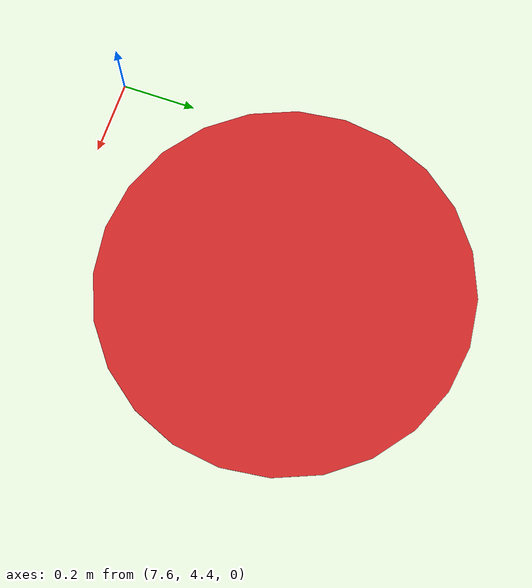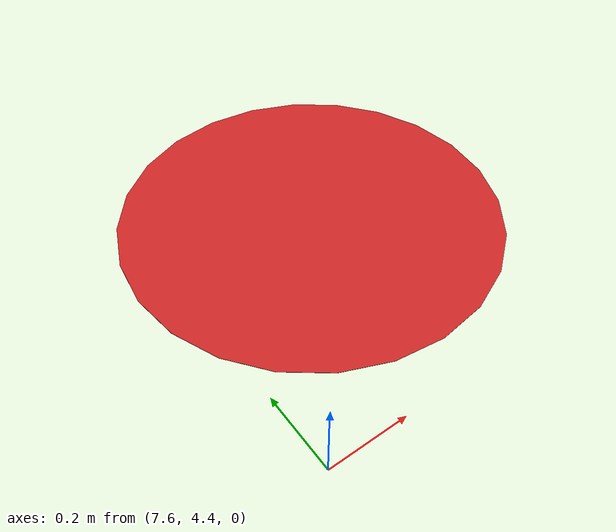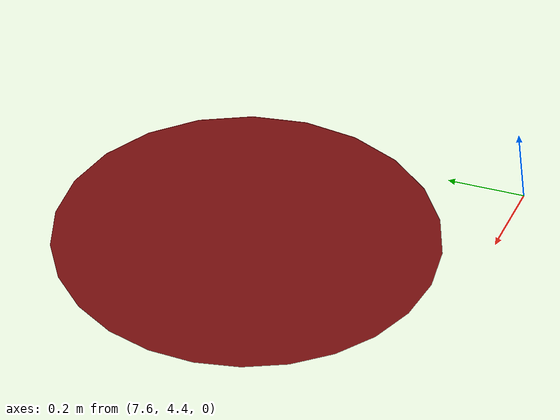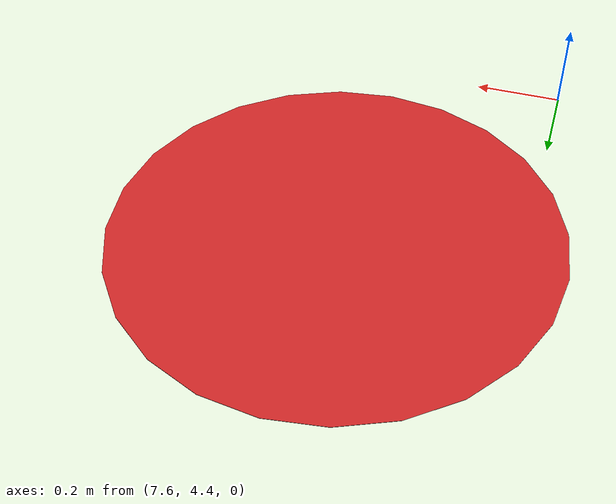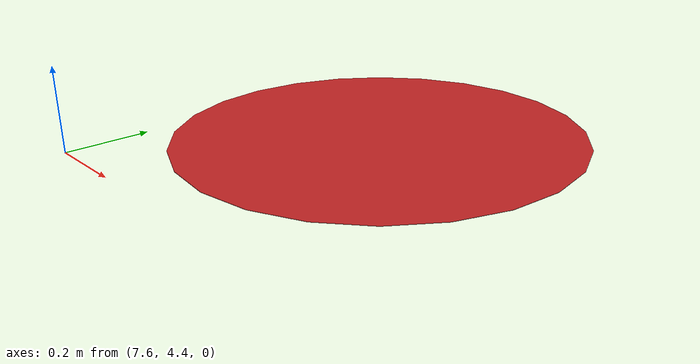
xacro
<?xml version="1.0"?>
<robot xmlns:xacro="http://www.ros.org/wiki/xacro" name="robot">

    <xacro:include filename="inertial_macros.xacro"/>

    <!-- BASE LINK -->

    <link name="base_link">

    </link>

    <joint name="unique_joint" type="fixed">
        <parent link="base_link"/>
        <child link="circle"/>
        <origin xyz="8.0 5.0 0"/>
    </joint>

    <link name="circle">
        <visual>
            <origin xyz="0 0 0"/>
            <geometry>
                <cylinder radius="0.5" length="0.001"/>
            </geometry>
            <material name="red"/>
        </visual>
        <collision>
            <origin xyz="0 0 0"/>
            <geometry>
                <cylinder radius="0.5" length="0.001"/>
            </geometry>
        </collision>
        <xacro:inertial_cylinder mass="1" radius="0.5" length="0.001">
            <origin xyz="0.0 0.0 0.0" rpy="0.0 0.0 0.0"/>
        </xacro:inertial_cylinder>
    </link>

    <gazebo reference="circle">
        <material>
            Gazebo/Yellow
        </material>
    </gazebo>
</robot>
